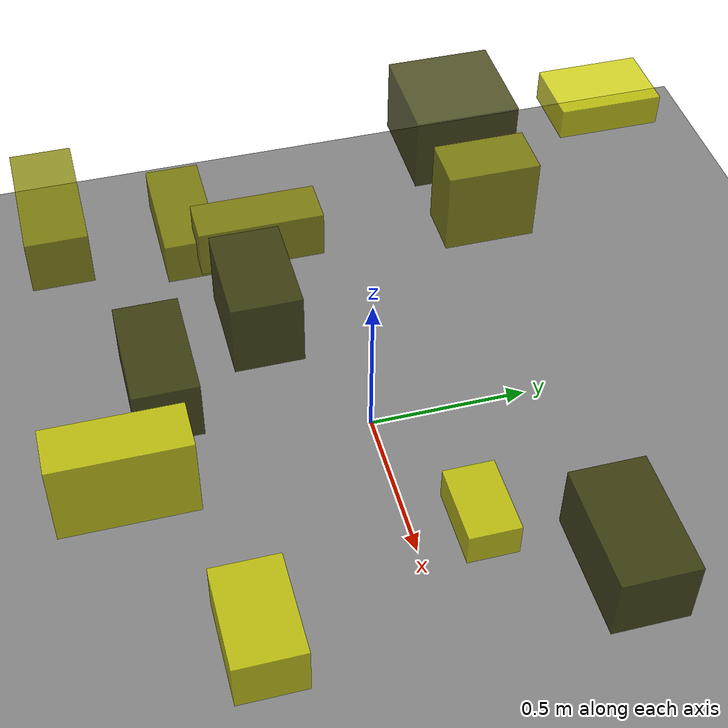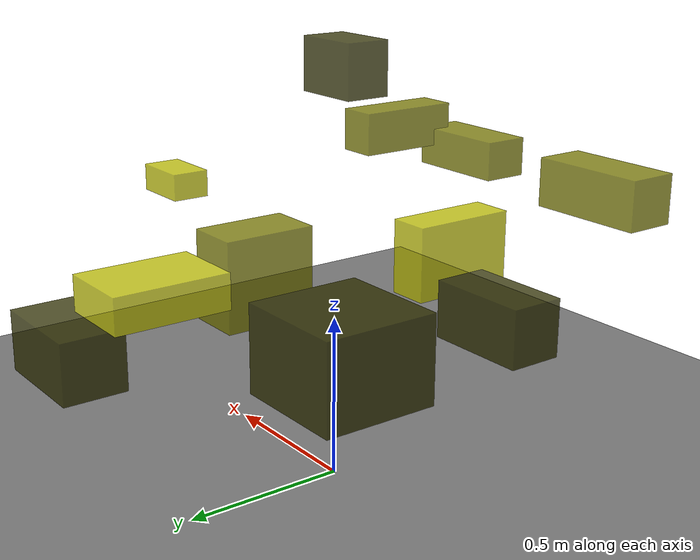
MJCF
<?xml version="1.0"?>
<mujoco model="obstacle_scene">
  <compiler angle="radian" coordinate="local"/>
  <option timestep="0.001" gravity="0 0 -9.81"/>

  <asset>
    <material name="obstacle_mat" rgba="0.8 0.8 0.0 0.8"/>
    <material name="ground_mat" rgba="0.5 0.5 0.5 1"/>
  </asset>

  <worldbody>
    <!-- Ground plane -->
    <geom name="ground" type="plane" size="3 3 0.1" material="ground_mat"/>

    <!-- Obstacles -->
    <body name="obstacle_0" pos="0.793831 0.490640 0.256570">
      <geom name="obs_0" type="box" size="0.191398 0.113131 0.106594" rgba="0.2 0.2 0.0 0.8"/>
    </body>
    <body name="obstacle_1" pos="-0.136760 0.359008 0.748342">
      <geom name="obs_1" type="box" size="0.076582 0.129393 0.123480" rgba="0.5 0.5 0.0 0.8"/>
    </body>
    <body name="obstacle_2" pos="0.378015 -0.784518 0.464715">
      <geom name="obs_2" type="box" size="0.074307 0.192851 0.133402" rgba="0.8 0.8 0.0 0.8"/>
    </body>
    <body name="obstacle_3" pos="-0.576629 0.404706 0.673861">
      <geom name="obs_3" type="box" size="0.155874 0.155532 0.116442" rgba="0.2 0.2 0.0 0.8"/>
    </body>
    <body name="obstacle_4" pos="-0.004779 -0.513070 0.935845">
      <geom name="obs_4" type="box" size="0.150924 0.067278 0.056695" rgba="0.5 0.5 0.0 0.8"/>
    </body>
    <body name="obstacle_5" pos="-0.352557 0.775158 0.840678">
      <geom name="obs_5" type="box" size="0.100283 0.147552 0.045075" rgba="0.8 0.8 0.0 0.8"/>
    </body>
    <body name="obstacle_6" pos="-0.032888 -0.625971 0.372780">
      <geom name="obs_6" type="box" size="0.178896 0.095379 0.099011" rgba="0.2 0.2 0.0 0.8"/>
    </body>
    <body name="obstacle_7" pos="0.149512 -0.347162 1.005119">
      <geom name="obs_7" type="box" size="0.057827 0.155246 0.062460" rgba="0.5 0.5 0.0 0.8"/>
    </body>
    <body name="obstacle_8" pos="0.923443 -0.002213 0.728445">
      <geom name="obs_8" type="box" size="0.101017 0.063601 0.045333" rgba="0.8 0.8 0.0 0.8"/>
    </body>
    <body name="obstacle_9" pos="0.517927 -0.424041 1.134829">
      <geom name="obs_9" type="box" size="0.122828 0.079799 0.092475" rgba="0.2 0.2 0.0 0.8"/>
    </body>
    <body name="obstacle_10" pos="-0.253200 -0.838525 0.812428">
      <geom name="obs_10" type="box" size="0.188764 0.082427 0.078560" rgba="0.5 0.5 0.0 0.8"/>
    </body>
    <body name="obstacle_11" pos="0.722662 -0.508220 0.132749">
      <geom name="obs_11" type="box" size="0.160249 0.103158 0.086018" rgba="0.8 0.8 0.0 0.8"/>
    </body>
  </worldbody>
</mujoco>
